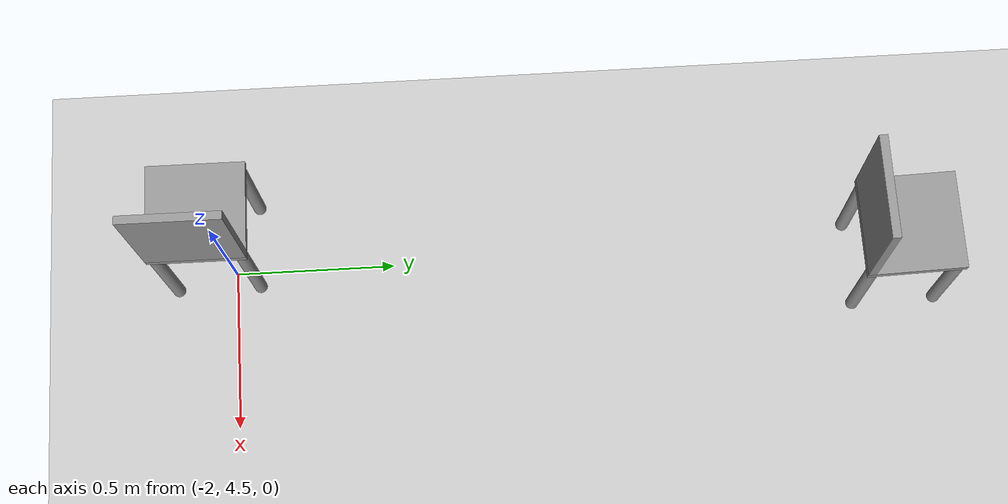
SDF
<sdf version="1.6">
 <world name="default">
  <model name="ground_plane">
   <static>1</static>
   <link name="link">
    <collision name="collision">
     <geometry><plane><normal>0 0 1</normal><size>100 100</size></plane></geometry>
     <surface><friction><ode><mu>100</mu><mu2>50</mu2></ode></friction></surface>
    </collision>
    <visual name="visual">
     <cast_shadows>0</cast_shadows>
     <geometry><plane><normal>0 0 1</normal><size>100 100</size></plane></geometry>
     <material>
      <script><uri>file://media/materials/scripts/gazebo.material</uri><name>Gazebo/Grey</name></script>
     </material>
    </visual>
   </link>
  </model>
  <model name="myChair_clone">
   <link name="link_0">
    <pose>0.022917 -0 0.0914 0 -0 0</pose>
    <inertial>
     <mass>1</mass>
     <inertia>
      <ixx>0.166667</ixx>
      <ixy>0</ixy>
      <ixz>0</ixz>
      <iyy>0.166667</iyy>
      <iyz>0</iyz>
      <izz>0.166667</izz>
     </inertia>
    </inertial>
    <visual name="visual">
     <geometry><box><size>0.3 0.3 0.025</size></box></geometry>
     <material>
      <lighting>1</lighting>
      <script><uri>file://media/materials/scripts/gazebo.material</uri><name>Gazebo/Grey</name></script>
      <ambient>0.3 0.3 0.3 1</ambient>
      <diffuse>0.7 0.7 0.7 1</diffuse>
      <specular>0.01 0.01 0.01 1</specular>
      <emissive>0 0 0 1</emissive>
      <shader type="vertex"><normal_map>__default__</normal_map></shader>
     </material>
    </visual>
    <collision name="collision">
     <geometry><box><size>0.3 0.3 0.025</size></box></geometry>
     <surface>
      <friction>
       <ode><mu>1</mu><mu2>1</mu2><fdir1>0 0 0</fdir1><slip1>0</slip1><slip2>0</slip2></ode>
       <torsional>
        <coefficient>1</coefficient>
        <patch_radius>0</patch_radius>
        <surface_radius>0</surface_radius>
        <use_patch_radius>1</use_patch_radius>
        <ode><slip>0</slip></ode>
       </torsional>
      </friction>
      <bounce><restitution_coefficient>0</restitution_coefficient><threshold>1e+06</threshold></bounce>
      <contact>
       <collide_without_contact>0</collide_without_contact>
       <collide_without_contact_bitmask>1</collide_without_contact_bitmask>
       <collide_bitmask>1</collide_bitmask>
       <ode>
        <soft_cfm>0</soft_cfm>
        <soft_erp>0.2</soft_erp>
        <kp>1e+13</kp>
        <kd>1</kd>
        <max_vel>0.01</max_vel>
        <min_depth>0</min_depth>
       </ode>
       <bullet>
        <split_impulse>1</split_impulse>
        <split_impulse_penetration_threshold>-0.01</split_impulse_penetration_threshold>
        <soft_cfm>0</soft_cfm>
        <soft_erp>0.2</soft_erp>
        <kp>1e+13</kp>
        <kd>1</kd>
       </bullet>
      </contact>
     </surface>
    </collision>
   </link>
   <link name="link_1">
    <pose>-0.107083 -0.13 -0.11875 0 -0 0</pose>
    <inertial>
     <mass>1</mass>
     <inertia><ixx>0.145833</ixx><ixy>0</ixy><ixz>0</ixz><iyy>0.145833</iyy><iyz>0</iyz><izz>0.125</izz></inertia>
    </inertial>
    <visual name="visual">
     <geometry><cylinder><radius>0.02</radius><length>0.4</length></cylinder></geometry>
     <material>
      <lighting>1</lighting>
      <script><uri>file://media/materials/scripts/gazebo.material</uri><name>Gazebo/Grey</name></script>
      <ambient>0.3 0.3 0.3 1</ambient>
      <diffuse>0.7 0.7 0.7 1</diffuse>
      <specular>0.01 0.01 0.01 1</specular>
      <emissive>0 0 0 1</emissive>
      <shader type="vertex"><normal_map>__default__</normal_map></shader>
     </material>
    </visual>
    <collision name="collision">
     <geometry><cylinder><radius>0.02</radius><length>0.4</length></cylinder></geometry>
     <surface>
      <friction>
       <ode><mu>1</mu><mu2>1</mu2><fdir1>0 0 0</fdir1><slip1>0</slip1><slip2>0</slip2></ode>
       <torsional>
        <coefficient>1</coefficient>
        <patch_radius>0</patch_radius>
        <surface_radius>0</surface_radius>
        <use_patch_radius>1</use_patch_radius>
        <ode><slip>0</slip></ode>
       </torsional>
      </friction>
      <bounce><restitution_coefficient>0</restitution_coefficient><threshold>1e+06</threshold></bounce>
      <contact>
       <collide_without_contact>0</collide_without_contact>
       <collide_without_contact_bitmask>1</collide_without_contact_bitmask>
       <collide_bitmask>1</collide_bitmask>
       <ode>
        <soft_cfm>0</soft_cfm>
        <soft_erp>0.2</soft_erp>
        <kp>1e+13</kp>
        <kd>1</kd>
        <max_vel>0.01</max_vel>
        <min_depth>0</min_depth>
       </ode>
       <bullet>
        <split_impulse>1</split_impulse>
        <split_impulse_penetration_threshold>-0.01</split_impulse_penetration_threshold>
        <soft_cfm>0</soft_cfm>
        <soft_erp>0.2</soft_erp>
        <kp>1e+13</kp>
        <kd>1</kd>
       </bullet>
      </contact>
     </surface>
    </collision>
   </link>
   <link name="link_1_clone">
    <pose>-0.107083 0.13 -0.11875 0 -0 0</pose>
    <inertial>
     <mass>1</mass>
     <inertia><ixx>0.145833</ixx><ixy>0</ixy><ixz>0</ixz><iyy>0.145833</iyy><iyz>0</iyz><izz>0.125</izz></inertia>
    </inertial>
    <visual name="visual">
     <geometry><cylinder><radius>0.02</radius><length>0.4</length></cylinder></geometry>
     <material>
      <lighting>1</lighting>
      <script><uri>file://media/materials/scripts/gazebo.material</uri><name>Gazebo/Grey</name></script>
      <ambient>0.3 0.3 0.3 1</ambient>
      <diffuse>0.7 0.7 0.7 1</diffuse>
      <specular>0.01 0.01 0.01 1</specular>
      <emissive>0 0 0 1</emissive>
      <shader type="vertex"><normal_map>__default__</normal_map></shader>
     </material>
    </visual>
    <collision name="collision">
     <geometry><cylinder><radius>0.02</radius><length>0.4</length></cylinder></geometry>
     <surface>
      <friction>
       <ode><mu>1</mu><mu2>1</mu2><fdir1>0 0 0</fdir1><slip1>0</slip1><slip2>0</slip2></ode>
       <torsional>
        <coefficient>1</coefficient>
        <patch_radius>0</patch_radius>
        <surface_radius>0</surface_radius>
        <use_patch_radius>1</use_patch_radius>
        <ode><slip>0</slip></ode>
       </torsional>
      </friction>
      <bounce><restitution_coefficient>0</restitution_coefficient><threshold>1e+06</threshold></bounce>
      <contact>
       <collide_without_contact>0</collide_without_contact>
       <collide_without_contact_bitmask>1</collide_without_contact_bitmask>
       <collide_bitmask>1</collide_bitmask>
       <ode>
        <soft_cfm>0</soft_cfm>
        <soft_erp>0.2</soft_erp>
        <kp>1e+13</kp>
        <kd>1</kd>
        <max_vel>0.01</max_vel>
        <min_depth>0</min_depth>
       </ode>
       <bullet>
        <split_impulse>1</split_impulse>
        <split_impulse_penetration_threshold>-0.01</split_impulse_penetration_threshold>
        <soft_cfm>0</soft_cfm>
        <soft_erp>0.2</soft_erp>
        <kp>1e+13</kp>
        <kd>1</kd>
       </bullet>
      </contact>
     </surface>
    </collision>
   </link>
   <link name="link_1_clone_0">
    <pose>0.152917 -0.13 -0.11875 0 -0 0</pose>
    <inertial>
     <mass>1</mass>
     <inertia><ixx>0.145833</ixx><ixy>0</ixy><ixz>0</ixz><iyy>0.145833</iyy><iyz>0</iyz><izz>0.125</izz></inertia>
    </inertial>
    <visual name="visual">
     <geometry><cylinder><radius>0.02</radius><length>0.4</length></cylinder></geometry>
     <material>
      <lighting>1</lighting>
      <script><uri>file://media/materials/scripts/gazebo.material</uri><name>Gazebo/Grey</name></script>
      <ambient>0.3 0.3 0.3 1</ambient>
      <diffuse>0.7 0.7 0.7 1</diffuse>
      <specular>0.01 0.01 0.01 1</specular>
      <emissive>0 0 0 1</emissive>
      <shader type="vertex"><normal_map>__default__</normal_map></shader>
     </material>
    </visual>
    <collision name="collision">
     <geometry><cylinder><radius>0.02</radius><length>0.4</length></cylinder></geometry>
     <surface>
      <friction>
       <ode><mu>1</mu><mu2>1</mu2><fdir1>0 0 0</fdir1><slip1>0</slip1><slip2>0</slip2></ode>
       <torsional>
        <coefficient>1</coefficient>
        <patch_radius>0</patch_radius>
        <surface_radius>0</surface_radius>
        <use_patch_radius>1</use_patch_radius>
        <ode><slip>0</slip></ode>
       </torsional>
      </friction>
      <bounce><restitution_coefficient>0</restitution_coefficient><threshold>1e+06</threshold></bounce>
      <contact>
       <collide_without_contact>0</collide_without_contact>
       <collide_without_contact_bitmask>1</collide_without_contact_bitmask>
       <collide_bitmask>1</collide_bitmask>
       <ode>
        <soft_cfm>0</soft_cfm>
        <soft_erp>0.2</soft_erp>
        <kp>1e+13</kp>
        <kd>1</kd>
        <max_vel>0.01</max_vel>
        <min_depth>0</min_depth>
       </ode>
       <bullet>
        <split_impulse>1</split_impulse>
        <split_impulse_penetration_threshold>-0.01</split_impulse_penetration_threshold>
        <soft_cfm>0</soft_cfm>
        <soft_erp>0.2</soft_erp>
        <kp>1e+13</kp>
        <kd>1</kd>
       </bullet>
      </contact>
     </surface>
    </collision>
   </link>
   <link name="link_1_clone_1">
    <pose>0.152917 0.13 -0.11875 0 -0 0</pose>
    <inertial>
     <mass>1</mass>
     <inertia><ixx>0.145833</ixx><ixy>0</ixy><ixz>0</ixz><iyy>0.145833</iyy><iyz>0</iyz><izz>0.125</izz></inertia>
    </inertial>
    <visual name="visual">
     <geometry><cylinder><radius>0.02</radius><length>0.4</length></cylinder></geometry>
     <material>
      <lighting>1</lighting>
      <script><uri>file://media/materials/scripts/gazebo.material</uri><name>Gazebo/Grey</name></script>
      <ambient>0.3 0.3 0.3 1</ambient>
      <diffuse>0.7 0.7 0.7 1</diffuse>
      <specular>0.01 0.01 0.01 1</specular>
      <emissive>0 0 0 1</emissive>
      <shader type="vertex"><normal_map>__default__</normal_map></shader>
     </material>
    </visual>
    <collision name="collision">
     <geometry><cylinder><radius>0.02</radius><length>0.4</length></cylinder></geometry>
     <surface>
      <friction>
       <ode><mu>1</mu><mu2>1</mu2><fdir1>0 0 0</fdir1><slip1>0</slip1><slip2>0</slip2></ode>
       <torsional>
        <coefficient>1</coefficient>
        <patch_radius>0</patch_radius>
        <surface_radius>0</surface_radius>
        <use_patch_radius>1</use_patch_radius>
        <ode><slip>0</slip></ode>
       </torsional>
      </friction>
      <bounce><restitution_coefficient>0</restitution_coefficient><threshold>1e+06</threshold></bounce>
      <contact>
       <collide_without_contact>0</collide_without_contact>
       <collide_without_contact_bitmask>1</collide_without_contact_bitmask>
       <collide_bitmask>1</collide_bitmask>
       <ode>
        <soft_cfm>0</soft_cfm>
        <soft_erp>0.2</soft_erp>
        <kp>1e+13</kp>
        <kd>1</kd>
        <max_vel>0.01</max_vel>
        <min_depth>0</min_depth>
       </ode>
       <bullet>
        <split_impulse>1</split_impulse>
        <split_impulse_penetration_threshold>-0.01</split_impulse_penetration_threshold>
        <soft_cfm>0</soft_cfm>
        <soft_erp>0.2</soft_erp>
        <kp>1e+13</kp>
        <kd>1</kd>
       </bullet>
      </contact>
     </surface>
    </collision>
   </link>
   <link name="link_2">
    <pose>-0.114583 0 0.303495 0 -0 0</pose>
    <inertial>
     <mass>1</mass>
     <inertia>
      <ixx>0.166667</ixx>
      <ixy>0</ixy>
      <ixz>0</ixz>
      <iyy>0.166667</iyy>
      <iyz>0</iyz>
      <izz>0.166667</izz>
     </inertia>
    </inertial>
    <visual name="visual">
     <geometry><box><size>0.025 0.3 0.4</size></box></geometry>
     <material>
      <lighting>1</lighting>
      <script><uri>file://media/materials/scripts/gazebo.material</uri><name>Gazebo/Grey</name></script>
      <ambient>0.3 0.3 0.3 1</ambient>
      <diffuse>0.7 0.7 0.7 1</diffuse>
      <specular>0.01 0.01 0.01 1</specular>
      <emissive>0 0 0 1</emissive>
      <shader type="vertex"><normal_map>__default__</normal_map></shader>
     </material>
    </visual>
    <collision name="collision">
     <geometry><box><size>0.025 0.3 0.4</size></box></geometry>
     <surface>
      <friction>
       <ode><mu>1</mu><mu2>1</mu2><fdir1>0 0 0</fdir1><slip1>0</slip1><slip2>0</slip2></ode>
       <torsional>
        <coefficient>1</coefficient>
        <patch_radius>0</patch_radius>
        <surface_radius>0</surface_radius>
        <use_patch_radius>1</use_patch_radius>
        <ode><slip>0</slip></ode>
       </torsional>
      </friction>
      <bounce><restitution_coefficient>0</restitution_coefficient><threshold>1e+06</threshold></bounce>
      <contact>
       <collide_without_contact>0</collide_without_contact>
       <collide_without_contact_bitmask>1</collide_without_contact_bitmask>
       <collide_bitmask>1</collide_bitmask>
       <ode>
        <soft_cfm>0</soft_cfm>
        <soft_erp>0.2</soft_erp>
        <kp>1e+13</kp>
        <kd>1</kd>
        <max_vel>0.01</max_vel>
        <min_depth>0</min_depth>
       </ode>
       <bullet>
        <split_impulse>1</split_impulse>
        <split_impulse_penetration_threshold>-0.01</split_impulse_penetration_threshold>
        <soft_cfm>0</soft_cfm>
        <soft_erp>0.2</soft_erp>
        <kp>1e+13</kp>
        <kd>1</kd>
       </bullet>
      </contact>
     </surface>
    </collision>
   </link>
   <joint name="link_0_JOINT_0" type="fixed">
    <parent>link_0</parent>
    <child>link_1</child>
    <physics>
     <ode><limit><cfm>0</cfm><erp>0.2</erp></limit><suspension><cfm>0</cfm><erp>0.2</erp></suspension></ode>
    </physics>
   </joint>
   <joint name="link_0_JOINT_1" type="fixed">
    <parent>link_0</parent>
    <child>link_1_clone</child>
    <physics>
     <ode><limit><cfm>0</cfm><erp>0.2</erp></limit><suspension><cfm>0</cfm><erp>0.2</erp></suspension></ode>
    </physics>
   </joint>
   <joint name="link_0_JOINT_2" type="fixed">
    <parent>link_0</parent>
    <child>link_1_clone_0</child>
    <physics>
     <ode><limit><cfm>0</cfm><erp>0.2</erp></limit><suspension><cfm>0</cfm><erp>0.2</erp></suspension></ode>
    </physics>
   </joint>
   <joint name="link_0_JOINT_3" type="fixed">
    <parent>link_0</parent>
    <child>link_1_clone_1</child>
    <physics>
     <ode><limit><cfm>0</cfm><erp>0.2</erp></limit><suspension><cfm>0</cfm><erp>0.2</erp></suspension></ode>
    </physics>
   </joint>
   <joint name="link_0_JOINT_5" type="revolute">
    <parent>link_0</parent>
    <child>link_2</child>
    <axis>
     <xyz>1 0 0</xyz>
     <use_parent_model_frame>0</use_parent_model_frame>
     <limit>
      <lower>-1.79769e+308</lower>
      <upper>1.79769e+308</upper>
      <effort>-1</effort>
      <velocity>-1</velocity>
     </limit>
     <dynamics>
      <spring_reference>0</spring_reference>
      <spring_stiffness>0</spring_stiffness>
      <damping>0</damping>
      <friction>0</friction>
     </dynamics>
    </axis>
    <physics>
     <ode><limit><cfm>0</cfm><erp>0.2</erp></limit><suspension><cfm>0</cfm><erp>0.2</erp></suspension></ode>
    </physics>
   </joint>
   <static>0</static>
   <pose>-2.06245 4.44502 0.31875 1e-06 -3e-06 3.13856</pose>
  </model>
  <model name="myChair_clone_clone">
   <link name="link_0">
    <pose>0.022917 -0 0.0914 0 -0 0</pose>
    <inertial>
     <mass>1</mass>
     <inertia>
      <ixx>0.166667</ixx>
      <ixy>0</ixy>
      <ixz>0</ixz>
      <iyy>0.166667</iyy>
      <iyz>0</iyz>
      <izz>0.166667</izz>
     </inertia>
    </inertial>
    <visual name="visual">
     <geometry><box><size>0.3 0.3 0.025</size></box></geometry>
     <material>
      <lighting>1</lighting>
      <script><uri>file://media/materials/scripts/gazebo.material</uri><name>Gazebo/Grey</name></script>
      <ambient>0.3 0.3 0.3 1</ambient>
      <diffuse>0.7 0.7 0.7 1</diffuse>
      <specular>0.01 0.01 0.01 1</specular>
      <emissive>0 0 0 1</emissive>
      <shader type="vertex"><normal_map>__default__</normal_map></shader>
     </material>
    </visual>
    <collision name="collision">
     <geometry><box><size>0.3 0.3 0.025</size></box></geometry>
     <surface>
      <friction>
       <ode><mu>1</mu><mu2>1</mu2><fdir1>0 0 0</fdir1><slip1>0</slip1><slip2>0</slip2></ode>
       <torsional>
        <coefficient>1</coefficient>
        <patch_radius>0</patch_radius>
        <surface_radius>0</surface_radius>
        <use_patch_radius>1</use_patch_radius>
        <ode><slip>0</slip></ode>
       </torsional>
      </friction>
      <bounce><restitution_coefficient>0</restitution_coefficient><threshold>1e+06</threshold></bounce>
      <contact>
       <collide_without_contact>0</collide_without_contact>
       <collide_without_contact_bitmask>1</collide_without_contact_bitmask>
       <collide_bitmask>1</collide_bitmask>
       <ode>
        <soft_cfm>0</soft_cfm>
        <soft_erp>0.2</soft_erp>
        <kp>1e+13</kp>
        <kd>1</kd>
        <max_vel>0.01</max_vel>
        <min_depth>0</min_depth>
       </ode>
       <bullet>
        <split_impulse>1</split_impulse>
        <split_impulse_penetration_threshold>-0.01</split_impulse_penetration_threshold>
        <soft_cfm>0</soft_cfm>
        <soft_erp>0.2</soft_erp>
        <kp>1e+13</kp>
        <kd>1</kd>
       </bullet>
      </contact>
     </surface>
    </collision>
   </link>
   <link name="link_1">
    <pose>-0.107083 -0.13 -0.11875 0 -0 0</pose>
    <inertial>
     <mass>1</mass>
     <inertia><ixx>0.145833</ixx><ixy>0</ixy><ixz>0</ixz><iyy>0.145833</iyy><iyz>0</iyz><izz>0.125</izz></inertia>
    </inertial>
    <visual name="visual">
     <geometry><cylinder><radius>0.02</radius><length>0.4</length></cylinder></geometry>
     <material>
      <lighting>1</lighting>
      <script><uri>file://media/materials/scripts/gazebo.material</uri><name>Gazebo/Grey</name></script>
      <ambient>0.3 0.3 0.3 1</ambient>
      <diffuse>0.7 0.7 0.7 1</diffuse>
      <specular>0.01 0.01 0.01 1</specular>
      <emissive>0 0 0 1</emissive>
      <shader type="vertex"><normal_map>__default__</normal_map></shader>
     </material>
    </visual>
    <collision name="collision">
     <geometry><cylinder><radius>0.02</radius><length>0.4</length></cylinder></geometry>
     <surface>
      <friction>
       <ode><mu>1</mu><mu2>1</mu2><fdir1>0 0 0</fdir1><slip1>0</slip1><slip2>0</slip2></ode>
       <torsional>
        <coefficient>1</coefficient>
        <patch_radius>0</patch_radius>
        <surface_radius>0</surface_radius>
        <use_patch_radius>1</use_patch_radius>
        <ode><slip>0</slip></ode>
       </torsional>
      </friction>
      <bounce><restitution_coefficient>0</restitution_coefficient><threshold>1e+06</threshold></bounce>
      <contact>
       <collide_without_contact>0</collide_without_contact>
       <collide_without_contact_bitmask>1</collide_without_contact_bitmask>
       <collide_bitmask>1</collide_bitmask>
       <ode>
        <soft_cfm>0</soft_cfm>
        <soft_erp>0.2</soft_erp>
        <kp>1e+13</kp>
        <kd>1</kd>
        <max_vel>0.01</max_vel>
        <min_depth>0</min_depth>
       </ode>
       <bullet>
        <split_impulse>1</split_impulse>
        <split_impulse_penetration_threshold>-0.01</split_impulse_penetration_threshold>
        <soft_cfm>0</soft_cfm>
        <soft_erp>0.2</soft_erp>
        <kp>1e+13</kp>
        <kd>1</kd>
       </bullet>
      </contact>
     </surface>
    </collision>
   </link>
   <link name="link_1_clone">
    <pose>-0.107083 0.13 -0.11875 0 -0 0</pose>
    <inertial>
     <mass>1</mass>
     <inertia><ixx>0.145833</ixx><ixy>0</ixy><ixz>0</ixz><iyy>0.145833</iyy><iyz>0</iyz><izz>0.125</izz></inertia>
    </inertial>
    <visual name="visual">
     <geometry><cylinder><radius>0.02</radius><length>0.4</length></cylinder></geometry>
     <material>
      <lighting>1</lighting>
      <script><uri>file://media/materials/scripts/gazebo.material</uri><name>Gazebo/Grey</name></script>
      <ambient>0.3 0.3 0.3 1</ambient>
      <diffuse>0.7 0.7 0.7 1</diffuse>
      <specular>0.01 0.01 0.01 1</specular>
      <emissive>0 0 0 1</emissive>
      <shader type="vertex"><normal_map>__default__</normal_map></shader>
     </material>
    </visual>
    <collision name="collision">
     <geometry><cylinder><radius>0.02</radius><length>0.4</length></cylinder></geometry>
     <surface>
      <friction>
       <ode><mu>1</mu><mu2>1</mu2><fdir1>0 0 0</fdir1><slip1>0</slip1><slip2>0</slip2></ode>
       <torsional>
        <coefficient>1</coefficient>
        <patch_radius>0</patch_radius>
        <surface_radius>0</surface_radius>
        <use_patch_radius>1</use_patch_radius>
        <ode><slip>0</slip></ode>
       </torsional>
      </friction>
      <bounce><restitution_coefficient>0</restitution_coefficient><threshold>1e+06</threshold></bounce>
      <contact>
       <collide_without_contact>0</collide_without_contact>
       <collide_without_contact_bitmask>1</collide_without_contact_bitmask>
       <collide_bitmask>1</collide_bitmask>
       <ode>
        <soft_cfm>0</soft_cfm>
        <soft_erp>0.2</soft_erp>
        <kp>1e+13</kp>
        <kd>1</kd>
        <max_vel>0.01</max_vel>
        <min_depth>0</min_depth>
       </ode>
       <bullet>
        <split_impulse>1</split_impulse>
        <split_impulse_penetration_threshold>-0.01</split_impulse_penetration_threshold>
        <soft_cfm>0</soft_cfm>
        <soft_erp>0.2</soft_erp>
        <kp>1e+13</kp>
        <kd>1</kd>
       </bullet>
      </contact>
     </surface>
    </collision>
   </link>
   <link name="link_1_clone_0">
    <pose>0.152917 -0.13 -0.11875 0 -0 0</pose>
    <inertial>
     <mass>1</mass>
     <inertia><ixx>0.145833</ixx><ixy>0</ixy><ixz>0</ixz><iyy>0.145833</iyy><iyz>0</iyz><izz>0.125</izz></inertia>
    </inertial>
    <visual name="visual">
     <geometry><cylinder><radius>0.02</radius><length>0.4</length></cylinder></geometry>
     <material>
      <lighting>1</lighting>
      <script><uri>file://media/materials/scripts/gazebo.material</uri><name>Gazebo/Grey</name></script>
      <ambient>0.3 0.3 0.3 1</ambient>
      <diffuse>0.7 0.7 0.7 1</diffuse>
      <specular>0.01 0.01 0.01 1</specular>
      <emissive>0 0 0 1</emissive>
      <shader type="vertex"><normal_map>__default__</normal_map></shader>
     </material>
    </visual>
    <collision name="collision">
     <geometry><cylinder><radius>0.02</radius><length>0.4</length></cylinder></geometry>
     <surface>
      <friction>
       <ode><mu>1</mu><mu2>1</mu2><fdir1>0 0 0</fdir1><slip1>0</slip1><slip2>0</slip2></ode>
       <torsional>
        <coefficient>1</coefficient>
        <patch_radius>0</patch_radius>
        <surface_radius>0</surface_radius>
        <use_patch_radius>1</use_patch_radius>
        <ode><slip>0</slip></ode>
       </torsional>
      </friction>
      <bounce><restitution_coefficient>0</restitution_coefficient><threshold>1e+06</threshold></bounce>
      <contact>
       <collide_without_contact>0</collide_without_contact>
       <collide_without_contact_bitmask>1</collide_without_contact_bitmask>
       <collide_bitmask>1</collide_bitmask>
       <ode>
        <soft_cfm>0</soft_cfm>
        <soft_erp>0.2</soft_erp>
        <kp>1e+13</kp>
        <kd>1</kd>
        <max_vel>0.01</max_vel>
        <min_depth>0</min_depth>
       </ode>
       <bullet>
        <split_impulse>1</split_impulse>
        <split_impulse_penetration_threshold>-0.01</split_impulse_penetration_threshold>
        <soft_cfm>0</soft_cfm>
        <soft_erp>0.2</soft_erp>
        <kp>1e+13</kp>
        <kd>1</kd>
       </bullet>
      </contact>
     </surface>
    </collision>
   </link>
   <link name="link_1_clone_1">
    <pose>0.152917 0.13 -0.11875 0 -0 0</pose>
    <inertial>
     <mass>1</mass>
     <inertia><ixx>0.145833</ixx><ixy>0</ixy><ixz>0</ixz><iyy>0.145833</iyy><iyz>0</iyz><izz>0.125</izz></inertia>
    </inertial>
    <visual name="visual">
     <geometry><cylinder><radius>0.02</radius><length>0.4</length></cylinder></geometry>
     <material>
      <lighting>1</lighting>
      <script><uri>file://media/materials/scripts/gazebo.material</uri><name>Gazebo/Grey</name></script>
      <ambient>0.3 0.3 0.3 1</ambient>
      <diffuse>0.7 0.7 0.7 1</diffuse>
      <specular>0.01 0.01 0.01 1</specular>
      <emissive>0 0 0 1</emissive>
      <shader type="vertex"><normal_map>__default__</normal_map></shader>
     </material>
    </visual>
    <collision name="collision">
     <geometry><cylinder><radius>0.02</radius><length>0.4</length></cylinder></geometry>
     <surface>
      <friction>
       <ode><mu>1</mu><mu2>1</mu2><fdir1>0 0 0</fdir1><slip1>0</slip1><slip2>0</slip2></ode>
       <torsional>
        <coefficient>1</coefficient>
        <patch_radius>0</patch_radius>
        <surface_radius>0</surface_radius>
        <use_patch_radius>1</use_patch_radius>
        <ode><slip>0</slip></ode>
       </torsional>
      </friction>
      <bounce><restitution_coefficient>0</restitution_coefficient><threshold>1e+06</threshold></bounce>
      <contact>
       <collide_without_contact>0</collide_without_contact>
       <collide_without_contact_bitmask>1</collide_without_contact_bitmask>
       <collide_bitmask>1</collide_bitmask>
       <ode>
        <soft_cfm>0</soft_cfm>
        <soft_erp>0.2</soft_erp>
        <kp>1e+13</kp>
        <kd>1</kd>
        <max_vel>0.01</max_vel>
        <min_depth>0</min_depth>
       </ode>
       <bullet>
        <split_impulse>1</split_impulse>
        <split_impulse_penetration_threshold>-0.01</split_impulse_penetration_threshold>
        <soft_cfm>0</soft_cfm>
        <soft_erp>0.2</soft_erp>
        <kp>1e+13</kp>
        <kd>1</kd>
       </bullet>
      </contact>
     </surface>
    </collision>
   </link>
   <link name="link_2">
    <pose>-0.114583 0 0.303495 0 -0 0</pose>
    <inertial>
     <mass>1</mass>
     <inertia>
      <ixx>0.166667</ixx>
      <ixy>0</ixy>
      <ixz>0</ixz>
      <iyy>0.166667</iyy>
      <iyz>0</iyz>
      <izz>0.166667</izz>
     </inertia>
    </inertial>
    <visual name="visual">
     <geometry><box><size>0.025 0.3 0.4</size></box></geometry>
     <material>
      <lighting>1</lighting>
      <script><uri>file://media/materials/scripts/gazebo.material</uri><name>Gazebo/Grey</name></script>
      <ambient>0.3 0.3 0.3 1</ambient>
      <diffuse>0.7 0.7 0.7 1</diffuse>
      <specular>0.01 0.01 0.01 1</specular>
      <emissive>0 0 0 1</emissive>
      <shader type="vertex"><normal_map>__default__</normal_map></shader>
     </material>
    </visual>
    <collision name="collision">
     <geometry><box><size>0.025 0.3 0.4</size></box></geometry>
     <surface>
      <friction>
       <ode><mu>1</mu><mu2>1</mu2><fdir1>0 0 0</fdir1><slip1>0</slip1><slip2>0</slip2></ode>
       <torsional>
        <coefficient>1</coefficient>
        <patch_radius>0</patch_radius>
        <surface_radius>0</surface_radius>
        <use_patch_radius>1</use_patch_radius>
        <ode><slip>0</slip></ode>
       </torsional>
      </friction>
      <bounce><restitution_coefficient>0</restitution_coefficient><threshold>1e+06</threshold></bounce>
      <contact>
       <collide_without_contact>0</collide_without_contact>
       <collide_without_contact_bitmask>1</collide_without_contact_bitmask>
       <collide_bitmask>1</collide_bitmask>
       <ode>
        <soft_cfm>0</soft_cfm>
        <soft_erp>0.2</soft_erp>
        <kp>1e+13</kp>
        <kd>1</kd>
        <max_vel>0.01</max_vel>
        <min_depth>0</min_depth>
       </ode>
       <bullet>
        <split_impulse>1</split_impulse>
        <split_impulse_penetration_threshold>-0.01</split_impulse_penetration_threshold>
        <soft_cfm>0</soft_cfm>
        <soft_erp>0.2</soft_erp>
        <kp>1e+13</kp>
        <kd>1</kd>
       </bullet>
      </contact>
     </surface>
    </collision>
   </link>
   <joint name="link_0_JOINT_0" type="fixed">
    <parent>link_0</parent>
    <child>link_1</child>
    <physics>
     <ode><limit><cfm>0</cfm><erp>0.2</erp></limit><suspension><cfm>0</cfm><erp>0.2</erp></suspension></ode>
    </physics>
   </joint>
   <joint name="link_0_JOINT_1" type="fixed">
    <parent>link_0</parent>
    <child>link_1_clone</child>
    <physics>
     <ode><limit><cfm>0</cfm><erp>0.2</erp></limit><suspension><cfm>0</cfm><erp>0.2</erp></suspension></ode>
    </physics>
   </joint>
   <joint name="link_0_JOINT_2" type="fixed">
    <parent>link_0</parent>
    <child>link_1_clone_0</child>
    <physics>
     <ode><limit><cfm>0</cfm><erp>0.2</erp></limit><suspension><cfm>0</cfm><erp>0.2</erp></suspension></ode>
    </physics>
   </joint>
   <joint name="link_0_JOINT_3" type="fixed">
    <parent>link_0</parent>
    <child>link_1_clone_1</child>
    <physics>
     <ode><limit><cfm>0</cfm><erp>0.2</erp></limit><suspension><cfm>0</cfm><erp>0.2</erp></suspension></ode>
    </physics>
   </joint>
   <joint name="link_0_JOINT_5" type="revolute">
    <parent>link_0</parent>
    <child>link_2</child>
    <axis>
     <xyz>1 0 0</xyz>
     <use_parent_model_frame>0</use_parent_model_frame>
     <limit>
      <lower>-1.79769e+308</lower>
      <upper>1.79769e+308</upper>
      <effort>-1</effort>
      <velocity>-1</velocity>
     </limit>
     <dynamics>
      <spring_reference>0</spring_reference>
      <spring_stiffness>0</spring_stiffness>
      <damping>0</damping>
      <friction>0</friction>
     </dynamics>
    </axis>
    <physics>
     <ode><limit><cfm>0</cfm><erp>0.2</erp></limit><suspension><cfm>0</cfm><erp>0.2</erp></suspension></ode>
    </physics>
   </joint>
   <static>0</static>
   <pose>-1.92987 6.55576 0.318748 1e-06 -2e-06 1.59993</pose>
  </model>
 </world>
</sdf>
